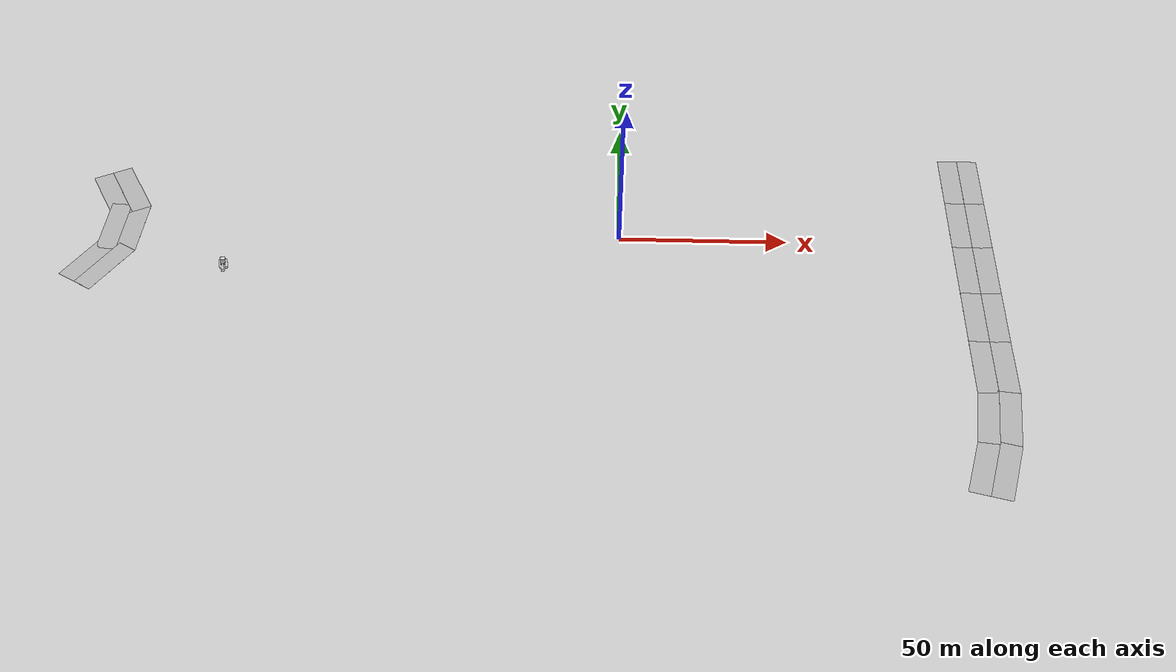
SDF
<sdf version="1.6">
 <world name="default">
  <model name="ground_plane">
   <static>1</static>
   <link name="link">
    <collision name="collision">
     <geometry><plane><normal>0 0 1</normal><size>500 500</size></plane></geometry>
     <surface><friction><ode><mu>100</mu><mu2>50</mu2></ode></friction></surface>
    </collision>
    <visual name="visual">
     <cast_shadows>0</cast_shadows>
     <geometry><plane><normal>0 0 1</normal><size>500 500</size></plane></geometry>
     <material>
      <script><uri>file://media/materials/scripts/gazebo.material</uri><name>Gazebo/Grey</name></script>
     </material>
    </visual>
   </link>
  </model>
  <model name="double_raw_road_2_clone">
   <model name="raw_road">
    <link name="link">
     <inertial>
      <mass>1</mass>
      <inertia>
       <ixx>0.166667</ixx>
       <ixy>0</ixy>
       <ixz>0</ixz>
       <iyy>0.166667</iyy>
       <iyz>0</iyz>
       <izz>0.166667</izz>
      </inertia>
     </inertial>
     <visual name="visual">
      <geometry><box><size>20 6 0.02</size></box></geometry>
      <material>
       <script>
        <name>asphalt/Diffuse</name>
        <uri>model://raw_road/materials/scripts</uri>
        <uri>model://raw_road/materials/textures</uri>
       </script>
       <shader type="vertex"><normal_map>__default__</normal_map></shader>
       <ambient>0.3 0.3 0.3 1</ambient>
       <diffuse>0.7 0.7 0.7 1</diffuse>
       <specular>0.01 0.01 0.01 1</specular>
       <emissive>0 0 0 1</emissive>
      </material>
      <pose>0 0 0.01 0 -0 0</pose>
     </visual>
     <collision name="collision">
      <pose>0 0 0.01 0 -0 0</pose>
      <geometry><box><size>20 6 0.02</size></box></geometry>
      <surface>
       <friction>
        <ode><mu>1</mu><mu2>1</mu2><fdir1>0 0 0</fdir1><slip1>0</slip1><slip2>0</slip2></ode>
        <torsional>
         <coefficient>1</coefficient>
         <patch_radius>0</patch_radius>
         <surface_radius>0</surface_radius>
         <use_patch_radius>1</use_patch_radius>
         <ode><slip>0</slip></ode>
        </torsional>
       </friction>
       <bounce><restitution_coefficient>0</restitution_coefficient><threshold>1e+06</threshold></bounce>
       <contact>
        <collide_without_contact>0</collide_without_contact>
        <collide_without_contact_bitmask>1</collide_without_contact_bitmask>
        <collide_bitmask>1</collide_bitmask>
        <ode>
         <soft_cfm>0</soft_cfm>
         <soft_erp>0.2</soft_erp>
         <kp>1e+13</kp>
         <kd>1</kd>
         <max_vel>0.01</max_vel>
         <min_depth>0</min_depth>
        </ode>
        <bullet>
         <split_impulse>1</split_impulse>
         <split_impulse_penetration_threshold>-0.01</split_impulse_penetration_threshold>
         <soft_cfm>0</soft_cfm>
         <soft_erp>0.2</soft_erp>
         <kp>1e+13</kp>
         <kd>1</kd>
        </bullet>
       </contact>
      </surface>
     </collision>
    </link>
    <static>1</static>
    <pose>0 -3.0009 0 0 -0 0</pose>
   </model>
   <model name="raw_road_0">
    <link name="link">
     <inertial>
      <mass>1</mass>
      <inertia>
       <ixx>0.166667</ixx>
       <ixy>0</ixy>
       <ixz>0</ixz>
       <iyy>0.166667</iyy>
       <iyz>0</iyz>
       <izz>0.166667</izz>
      </inertia>
     </inertial>
     <visual name="visual">
      <geometry><box><size>20 6 0.02</size></box></geometry>
      <material>
       <script>
        <name>asphalt/Diffuse</name>
        <uri>model://raw_road/materials/scripts</uri>
        <uri>model://raw_road/materials/textures</uri>
       </script>
       <shader type="vertex"><normal_map>__default__</normal_map></shader>
       <ambient>0.3 0.3 0.3 1</ambient>
       <diffuse>0.7 0.7 0.7 1</diffuse>
       <specular>0.01 0.01 0.01 1</specular>
       <emissive>0 0 0 1</emissive>
      </material>
      <pose>0 0 0.01 0 -0 0</pose>
     </visual>
     <collision name="collision">
      <pose>0 0 0.01 0 -0 0</pose>
      <geometry><box><size>20 6 0.02</size></box></geometry>
      <surface>
       <friction>
        <ode><mu>1</mu><mu2>1</mu2><fdir1>0 0 0</fdir1><slip1>0</slip1><slip2>0</slip2></ode>
        <torsional>
         <coefficient>1</coefficient>
         <patch_radius>0</patch_radius>
         <surface_radius>0</surface_radius>
         <use_patch_radius>1</use_patch_radius>
         <ode><slip>0</slip></ode>
        </torsional>
       </friction>
       <bounce><restitution_coefficient>0</restitution_coefficient><threshold>1e+06</threshold></bounce>
       <contact>
        <collide_without_contact>0</collide_without_contact>
        <collide_without_contact_bitmask>1</collide_without_contact_bitmask>
        <collide_bitmask>1</collide_bitmask>
        <ode>
         <soft_cfm>0</soft_cfm>
         <soft_erp>0.2</soft_erp>
         <kp>1e+13</kp>
         <kd>1</kd>
         <max_vel>0.01</max_vel>
         <min_depth>0</min_depth>
        </ode>
        <bullet>
         <split_impulse>1</split_impulse>
         <split_impulse_penetration_threshold>-0.01</split_impulse_penetration_threshold>
         <soft_cfm>0</soft_cfm>
         <soft_erp>0.2</soft_erp>
         <kp>1e+13</kp>
         <kd>1</kd>
        </bullet>
       </contact>
      </surface>
     </collision>
    </link>
    <static>1</static>
    <pose>0 3.0009 0 0 -0 0</pose>
   </model>
   <static>1</static>
   <pose>-153.201 15.9793 0 0 0 -1.09404</pose>
  </model>
  <model name="double_raw_road_2_clone_clone">
   <model name="raw_road">
    <link name="link">
     <inertial>
      <mass>1</mass>
      <inertia>
       <ixx>0.166667</ixx>
       <ixy>0</ixy>
       <ixz>0</ixz>
       <iyy>0.166667</iyy>
       <iyz>0</iyz>
       <izz>0.166667</izz>
      </inertia>
     </inertial>
     <visual name="visual">
      <geometry><box><size>20 6 0.02</size></box></geometry>
      <material>
       <script>
        <name>asphalt/Diffuse</name>
        <uri>model://raw_road/materials/scripts</uri>
        <uri>model://raw_road/materials/textures</uri>
       </script>
       <shader type="vertex"><normal_map>__default__</normal_map></shader>
       <ambient>0.3 0.3 0.3 1</ambient>
       <diffuse>0.7 0.7 0.7 1</diffuse>
       <specular>0.01 0.01 0.01 1</specular>
       <emissive>0 0 0 1</emissive>
      </material>
      <pose>0 0 0.01 0 -0 0</pose>
     </visual>
     <collision name="collision">
      <pose>0 0 0.01 0 -0 0</pose>
      <geometry><box><size>20 6 0.02</size></box></geometry>
      <surface>
       <friction>
        <ode><mu>1</mu><mu2>1</mu2><fdir1>0 0 0</fdir1><slip1>0</slip1><slip2>0</slip2></ode>
        <torsional>
         <coefficient>1</coefficient>
         <patch_radius>0</patch_radius>
         <surface_radius>0</surface_radius>
         <use_patch_radius>1</use_patch_radius>
         <ode><slip>0</slip></ode>
        </torsional>
       </friction>
       <bounce><restitution_coefficient>0</restitution_coefficient><threshold>1e+06</threshold></bounce>
       <contact>
        <collide_without_contact>0</collide_without_contact>
        <collide_without_contact_bitmask>1</collide_without_contact_bitmask>
        <collide_bitmask>1</collide_bitmask>
        <ode>
         <soft_cfm>0</soft_cfm>
         <soft_erp>0.2</soft_erp>
         <kp>1e+13</kp>
         <kd>1</kd>
         <max_vel>0.01</max_vel>
         <min_depth>0</min_depth>
        </ode>
        <bullet>
         <split_impulse>1</split_impulse>
         <split_impulse_penetration_threshold>-0.01</split_impulse_penetration_threshold>
         <soft_cfm>0</soft_cfm>
         <soft_erp>0.2</soft_erp>
         <kp>1e+13</kp>
         <kd>1</kd>
        </bullet>
       </contact>
      </surface>
     </collision>
    </link>
    <static>1</static>
    <pose>0 -3.0009 0 0 -0 0</pose>
   </model>
   <model name="raw_road_0">
    <link name="link">
     <inertial>
      <mass>1</mass>
      <inertia>
       <ixx>0.166667</ixx>
       <ixy>0</ixy>
       <ixz>0</ixz>
       <iyy>0.166667</iyy>
       <iyz>0</iyz>
       <izz>0.166667</izz>
      </inertia>
     </inertial>
     <visual name="visual">
      <geometry><box><size>20 6 0.02</size></box></geometry>
      <material>
       <script>
        <name>asphalt/Diffuse</name>
        <uri>model://raw_road/materials/scripts</uri>
        <uri>model://raw_road/materials/textures</uri>
       </script>
       <shader type="vertex"><normal_map>__default__</normal_map></shader>
       <ambient>0.3 0.3 0.3 1</ambient>
       <diffuse>0.7 0.7 0.7 1</diffuse>
       <specular>0.01 0.01 0.01 1</specular>
       <emissive>0 0 0 1</emissive>
      </material>
      <pose>0 0 0.01 0 -0 0</pose>
     </visual>
     <collision name="collision">
      <pose>0 0 0.01 0 -0 0</pose>
      <geometry><box><size>20 6 0.02</size></box></geometry>
      <surface>
       <friction>
        <ode><mu>1</mu><mu2>1</mu2><fdir1>0 0 0</fdir1><slip1>0</slip1><slip2>0</slip2></ode>
        <torsional>
         <coefficient>1</coefficient>
         <patch_radius>0</patch_radius>
         <surface_radius>0</surface_radius>
         <use_patch_radius>1</use_patch_radius>
         <ode><slip>0</slip></ode>
        </torsional>
       </friction>
       <bounce><restitution_coefficient>0</restitution_coefficient><threshold>1e+06</threshold></bounce>
       <contact>
        <collide_without_contact>0</collide_without_contact>
        <collide_without_contact_bitmask>1</collide_without_contact_bitmask>
        <collide_bitmask>1</collide_bitmask>
        <ode>
         <soft_cfm>0</soft_cfm>
         <soft_erp>0.2</soft_erp>
         <kp>1e+13</kp>
         <kd>1</kd>
         <max_vel>0.01</max_vel>
         <min_depth>0</min_depth>
        </ode>
        <bullet>
         <split_impulse>1</split_impulse>
         <split_impulse_penetration_threshold>-0.01</split_impulse_penetration_threshold>
         <soft_cfm>0</soft_cfm>
         <soft_erp>0.2</soft_erp>
         <kp>1e+13</kp>
         <kd>1</kd>
        </bullet>
       </contact>
      </surface>
     </collision>
    </link>
    <static>1</static>
    <pose>0 3.0009 0 0 -0 0</pose>
   </model>
   <static>1</static>
   <pose>-149.979 0.265816 0 0 0 -1.64156</pose>
  </model>
  <model name="double_raw_road_2_clone_clone_clone">
   <model name="raw_road">
    <link name="link">
     <inertial>
      <mass>1</mass>
      <inertia>
       <ixx>0.166667</ixx>
       <ixy>0</ixy>
       <ixz>0</ixz>
       <iyy>0.166667</iyy>
       <iyz>0</iyz>
       <izz>0.166667</izz>
      </inertia>
     </inertial>
     <visual name="visual">
      <geometry><box><size>20 6 0.02</size></box></geometry>
      <material>
       <script>
        <name>asphalt/Diffuse</name>
        <uri>model://raw_road/materials/scripts</uri>
        <uri>model://raw_road/materials/textures</uri>
       </script>
       <shader type="vertex"><normal_map>__default__</normal_map></shader>
       <ambient>0.3 0.3 0.3 1</ambient>
       <diffuse>0.7 0.7 0.7 1</diffuse>
       <specular>0.01 0.01 0.01 1</specular>
       <emissive>0 0 0 1</emissive>
      </material>
      <pose>0 0 0.01 0 -0 0</pose>
     </visual>
     <collision name="collision">
      <pose>0 0 0.01 0 -0 0</pose>
      <geometry><box><size>20 6 0.02</size></box></geometry>
      <surface>
       <friction>
        <ode><mu>1</mu><mu2>1</mu2><fdir1>0 0 0</fdir1><slip1>0</slip1><slip2>0</slip2></ode>
        <torsional>
         <coefficient>1</coefficient>
         <patch_radius>0</patch_radius>
         <surface_radius>0</surface_radius>
         <use_patch_radius>1</use_patch_radius>
         <ode><slip>0</slip></ode>
        </torsional>
       </friction>
       <bounce><restitution_coefficient>0</restitution_coefficient><threshold>1e+06</threshold></bounce>
       <contact>
        <collide_without_contact>0</collide_without_contact>
        <collide_without_contact_bitmask>1</collide_without_contact_bitmask>
        <collide_bitmask>1</collide_bitmask>
        <ode>
         <soft_cfm>0</soft_cfm>
         <soft_erp>0.2</soft_erp>
         <kp>1e+13</kp>
         <kd>1</kd>
         <max_vel>0.01</max_vel>
         <min_depth>0</min_depth>
        </ode>
        <bullet>
         <split_impulse>1</split_impulse>
         <split_impulse_penetration_threshold>-0.01</split_impulse_penetration_threshold>
         <soft_cfm>0</soft_cfm>
         <soft_erp>0.2</soft_erp>
         <kp>1e+13</kp>
         <kd>1</kd>
        </bullet>
       </contact>
      </surface>
     </collision>
    </link>
    <static>1</static>
    <pose>0 -3.0009 0 0 -0 0</pose>
   </model>
   <model name="raw_road_0">
    <link name="link">
     <inertial>
      <mass>1</mass>
      <inertia>
       <ixx>0.166667</ixx>
       <ixy>0</ixy>
       <ixz>0</ixz>
       <iyy>0.166667</iyy>
       <iyz>0</iyz>
       <izz>0.166667</izz>
      </inertia>
     </inertial>
     <visual name="visual">
      <geometry><box><size>20 6 0.02</size></box></geometry>
      <material>
       <script>
        <name>asphalt/Diffuse</name>
        <uri>model://raw_road/materials/scripts</uri>
        <uri>model://raw_road/materials/textures</uri>
       </script>
       <shader type="vertex"><normal_map>__default__</normal_map></shader>
       <ambient>0.3 0.3 0.3 1</ambient>
       <diffuse>0.7 0.7 0.7 1</diffuse>
       <specular>0.01 0.01 0.01 1</specular>
       <emissive>0 0 0 1</emissive>
      </material>
      <pose>0 0 0.01 0 -0 0</pose>
     </visual>
     <collision name="collision">
      <pose>0 0 0.01 0 -0 0</pose>
      <geometry><box><size>20 6 0.02</size></box></geometry>
      <surface>
       <friction>
        <ode><mu>1</mu><mu2>1</mu2><fdir1>0 0 0</fdir1><slip1>0</slip1><slip2>0</slip2></ode>
        <torsional>
         <coefficient>1</coefficient>
         <patch_radius>0</patch_radius>
         <surface_radius>0</surface_radius>
         <use_patch_radius>1</use_patch_radius>
         <ode><slip>0</slip></ode>
        </torsional>
       </friction>
       <bounce><restitution_coefficient>0</restitution_coefficient><threshold>1e+06</threshold></bounce>
       <contact>
        <collide_without_contact>0</collide_without_contact>
        <collide_without_contact_bitmask>1</collide_without_contact_bitmask>
        <collide_bitmask>1</collide_bitmask>
        <ode>
         <soft_cfm>0</soft_cfm>
         <soft_erp>0.2</soft_erp>
         <kp>1e+13</kp>
         <kd>1</kd>
         <max_vel>0.01</max_vel>
         <min_depth>0</min_depth>
        </ode>
        <bullet>
         <split_impulse>1</split_impulse>
         <split_impulse_penetration_threshold>-0.01</split_impulse_penetration_threshold>
         <soft_cfm>0</soft_cfm>
         <soft_erp>0.2</soft_erp>
         <kp>1e+13</kp>
         <kd>1</kd>
        </bullet>
       </contact>
      </surface>
     </collision>
    </link>
    <static>1</static>
    <pose>0 3.0009 0 0 -0 0</pose>
   </model>
   <static>1</static>
   <pose>-155.045 -15.5124 0 0 0 -2.12011</pose>
  </model>
  <model name="double_raw_road_4_clone_2_clone">
   <model name="raw_road">
    <link name="link">
     <inertial>
      <mass>1</mass>
      <inertia>
       <ixx>0.166667</ixx>
       <ixy>0</ixy>
       <ixz>0</ixz>
       <iyy>0.166667</iyy>
       <iyz>0</iyz>
       <izz>0.166667</izz>
      </inertia>
     </inertial>
     <visual name="visual">
      <geometry><box><size>20 6 0.02</size></box></geometry>
      <material>
       <script>
        <name>asphalt/Diffuse</name>
        <uri>model://raw_road/materials/scripts</uri>
        <uri>model://raw_road/materials/textures</uri>
       </script>
       <shader type="vertex"><normal_map>__default__</normal_map></shader>
       <ambient>0.3 0.3 0.3 1</ambient>
       <diffuse>0.7 0.7 0.7 1</diffuse>
       <specular>0.01 0.01 0.01 1</specular>
       <emissive>0 0 0 1</emissive>
      </material>
      <pose>0 0 0.01 0 -0 0</pose>
     </visual>
     <collision name="collision">
      <pose>0 0 0.01 0 -0 0</pose>
      <geometry><box><size>20 6 0.02</size></box></geometry>
      <surface>
       <friction>
        <ode><mu>1</mu><mu2>1</mu2><fdir1>0 0 0</fdir1><slip1>0</slip1><slip2>0</slip2></ode>
        <torsional>
         <coefficient>1</coefficient>
         <patch_radius>0</patch_radius>
         <surface_radius>0</surface_radius>
         <use_patch_radius>1</use_patch_radius>
         <ode><slip>0</slip></ode>
        </torsional>
       </friction>
       <bounce><restitution_coefficient>0</restitution_coefficient><threshold>1e+06</threshold></bounce>
       <contact>
        <collide_without_contact>0</collide_without_contact>
        <collide_without_contact_bitmask>1</collide_without_contact_bitmask>
        <collide_bitmask>1</collide_bitmask>
        <ode>
         <soft_cfm>0</soft_cfm>
         <soft_erp>0.2</soft_erp>
         <kp>1e+13</kp>
         <kd>1</kd>
         <max_vel>0.01</max_vel>
         <min_depth>0</min_depth>
        </ode>
        <bullet>
         <split_impulse>1</split_impulse>
         <split_impulse_penetration_threshold>-0.01</split_impulse_penetration_threshold>
         <soft_cfm>0</soft_cfm>
         <soft_erp>0.2</soft_erp>
         <kp>1e+13</kp>
         <kd>1</kd>
        </bullet>
       </contact>
      </surface>
     </collision>
    </link>
    <static>1</static>
    <pose>0 -3.0009 0 0 -0 0</pose>
   </model>
   <model name="raw_road_0">
    <link name="link">
     <inertial>
      <mass>1</mass>
      <inertia>
       <ixx>0.166667</ixx>
       <ixy>0</ixy>
       <ixz>0</ixz>
       <iyy>0.166667</iyy>
       <iyz>0</iyz>
       <izz>0.166667</izz>
      </inertia>
     </inertial>
     <visual name="visual">
      <geometry><box><size>20 6 0.02</size></box></geometry>
      <material>
       <script>
        <name>asphalt/Diffuse</name>
        <uri>model://raw_road/materials/scripts</uri>
        <uri>model://raw_road/materials/textures</uri>
       </script>
       <shader type="vertex"><normal_map>__default__</normal_map></shader>
       <ambient>0.3 0.3 0.3 1</ambient>
       <diffuse>0.7 0.7 0.7 1</diffuse>
       <specular>0.01 0.01 0.01 1</specular>
       <emissive>0 0 0 1</emissive>
      </material>
      <pose>0 0 0.01 0 -0 0</pose>
     </visual>
     <collision name="collision">
      <pose>0 0 0.01 0 -0 0</pose>
      <geometry><box><size>20 6 0.02</size></box></geometry>
      <surface>
       <friction>
        <ode><mu>1</mu><mu2>1</mu2><fdir1>0 0 0</fdir1><slip1>0</slip1><slip2>0</slip2></ode>
        <torsional>
         <coefficient>1</coefficient>
         <patch_radius>0</patch_radius>
         <surface_radius>0</surface_radius>
         <use_patch_radius>1</use_patch_radius>
         <ode><slip>0</slip></ode>
        </torsional>
       </friction>
       <bounce><restitution_coefficient>0</restitution_coefficient><threshold>1e+06</threshold></bounce>
       <contact>
        <collide_without_contact>0</collide_without_contact>
        <collide_without_contact_bitmask>1</collide_without_contact_bitmask>
        <collide_bitmask>1</collide_bitmask>
        <ode>
         <soft_cfm>0</soft_cfm>
         <soft_erp>0.2</soft_erp>
         <kp>1e+13</kp>
         <kd>1</kd>
         <max_vel>0.01</max_vel>
         <min_depth>0</min_depth>
        </ode>
        <bullet>
         <split_impulse>1</split_impulse>
         <split_impulse_penetration_threshold>-0.01</split_impulse_penetration_threshold>
         <soft_cfm>0</soft_cfm>
         <soft_erp>0.2</soft_erp>
         <kp>1e+13</kp>
         <kd>1</kd>
        </bullet>
       </contact>
      </surface>
     </collision>
    </link>
    <static>1</static>
    <pose>0 3.0009 0 0 -0 0</pose>
   </model>
   <static>1</static>
   <pose>105.504 -49.6882 0 0 -0 1.57392</pose>
  </model>
  <model name="double_raw_road_4_clone_2_clone_0_clone_clone_clone_clone_clone_clone_0_clone">
   <model name="raw_road">
    <link name="link">
     <inertial>
      <mass>1</mass>
      <inertia>
       <ixx>0.166667</ixx>
       <ixy>0</ixy>
       <ixz>0</ixz>
       <iyy>0.166667</iyy>
       <iyz>0</iyz>
       <izz>0.166667</izz>
      </inertia>
     </inertial>
     <visual name="visual">
      <geometry><box><size>20 6 0.02</size></box></geometry>
      <material>
       <script>
        <name>asphalt/Diffuse</name>
        <uri>model://raw_road/materials/scripts</uri>
        <uri>model://raw_road/materials/textures</uri>
       </script>
       <shader type="vertex"><normal_map>__default__</normal_map></shader>
       <ambient>0.3 0.3 0.3 1</ambient>
       <diffuse>0.7 0.7 0.7 1</diffuse>
       <specular>0.01 0.01 0.01 1</specular>
       <emissive>0 0 0 1</emissive>
      </material>
      <pose>0 0 0.01 0 -0 0</pose>
     </visual>
     <collision name="collision">
      <pose>0 0 0.01 0 -0 0</pose>
      <geometry><box><size>20 6 0.02</size></box></geometry>
      <surface>
       <friction>
        <ode><mu>1</mu><mu2>1</mu2><fdir1>0 0 0</fdir1><slip1>0</slip1><slip2>0</slip2></ode>
        <torsional>
         <coefficient>1</coefficient>
         <patch_radius>0</patch_radius>
         <surface_radius>0</surface_radius>
         <use_patch_radius>1</use_patch_radius>
         <ode><slip>0</slip></ode>
        </torsional>
       </friction>
       <bounce><restitution_coefficient>0</restitution_coefficient><threshold>1e+06</threshold></bounce>
       <contact>
        <collide_without_contact>0</collide_without_contact>
        <collide_without_contact_bitmask>1</collide_without_contact_bitmask>
        <collide_bitmask>1</collide_bitmask>
        <ode>
         <soft_cfm>0</soft_cfm>
         <soft_erp>0.2</soft_erp>
         <kp>1e+13</kp>
         <kd>1</kd>
         <max_vel>0.01</max_vel>
         <min_depth>0</min_depth>
        </ode>
        <bullet>
         <split_impulse>1</split_impulse>
         <split_impulse_penetration_threshold>-0.01</split_impulse_penetration_threshold>
         <soft_cfm>0</soft_cfm>
         <soft_erp>0.2</soft_erp>
         <kp>1e+13</kp>
         <kd>1</kd>
        </bullet>
       </contact>
      </surface>
     </collision>
    </link>
    <static>1</static>
    <pose>0 -3.0009 0 0 -0 0</pose>
   </model>
   <model name="raw_road_0">
    <link name="link">
     <inertial>
      <mass>1</mass>
      <inertia>
       <ixx>0.166667</ixx>
       <ixy>0</ixy>
       <ixz>0</ixz>
       <iyy>0.166667</iyy>
       <iyz>0</iyz>
       <izz>0.166667</izz>
      </inertia>
     </inertial>
     <visual name="visual">
      <geometry><box><size>20 6 0.02</size></box></geometry>
      <material>
       <script>
        <name>asphalt/Diffuse</name>
        <uri>model://raw_road/materials/scripts</uri>
        <uri>model://raw_road/materials/textures</uri>
       </script>
       <shader type="vertex"><normal_map>__default__</normal_map></shader>
       <ambient>0.3 0.3 0.3 1</ambient>
       <diffuse>0.7 0.7 0.7 1</diffuse>
       <specular>0.01 0.01 0.01 1</specular>
       <emissive>0 0 0 1</emissive>
      </material>
      <pose>0 0 0.01 0 -0 0</pose>
     </visual>
     <collision name="collision">
      <pose>0 0 0.01 0 -0 0</pose>
      <geometry><box><size>20 6 0.02</size></box></geometry>
      <surface>
       <friction>
        <ode><mu>1</mu><mu2>1</mu2><fdir1>0 0 0</fdir1><slip1>0</slip1><slip2>0</slip2></ode>
        <torsional>
         <coefficient>1</coefficient>
         <patch_radius>0</patch_radius>
         <surface_radius>0</surface_radius>
         <use_patch_radius>1</use_patch_radius>
         <ode><slip>0</slip></ode>
        </torsional>
       </friction>
       <bounce><restitution_coefficient>0</restitution_coefficient><threshold>1e+06</threshold></bounce>
       <contact>
        <collide_without_contact>0</collide_without_contact>
        <collide_without_contact_bitmask>1</collide_without_contact_bitmask>
        <collide_bitmask>1</collide_bitmask>
        <ode>
         <soft_cfm>0</soft_cfm>
         <soft_erp>0.2</soft_erp>
         <kp>1e+13</kp>
         <kd>1</kd>
         <max_vel>0.01</max_vel>
         <min_depth>0</min_depth>
        </ode>
        <bullet>
         <split_impulse>1</split_impulse>
         <split_impulse_penetration_threshold>-0.01</split_impulse_penetration_threshold>
         <soft_cfm>0</soft_cfm>
         <soft_erp>0.2</soft_erp>
         <kp>1e+13</kp>
         <kd>1</kd>
        </bullet>
       </contact>
      </surface>
     </collision>
    </link>
    <static>1</static>
    <pose>0 3.0009 0 0 -0 0</pose>
   </model>
   <static>1</static>
   <pose>100.92 -87.6055 0 0 -0 1.31113</pose>
  </model>
  <model name="double_raw_road_4_clone_2_clone_0_clone_clone_clone_clone_clone_clone_0_clone_clone">
   <model name="raw_road">
    <link name="link">
     <inertial>
      <mass>1</mass>
      <inertia>
       <ixx>0.166667</ixx>
       <ixy>0</ixy>
       <ixz>0</ixz>
       <iyy>0.166667</iyy>
       <iyz>0</iyz>
       <izz>0.166667</izz>
      </inertia>
     </inertial>
     <visual name="visual">
      <geometry><box><size>20 6 0.02</size></box></geometry>
      <material>
       <script>
        <name>asphalt/Diffuse</name>
        <uri>model://raw_road/materials/scripts</uri>
        <uri>model://raw_road/materials/textures</uri>
       </script>
       <shader type="vertex"><normal_map>__default__</normal_map></shader>
       <ambient>0.3 0.3 0.3 1</ambient>
       <diffuse>0.7 0.7 0.7 1</diffuse>
       <specular>0.01 0.01 0.01 1</specular>
       <emissive>0 0 0 1</emissive>
      </material>
      <pose>0 0 0.01 0 -0 0</pose>
     </visual>
     <collision name="collision">
      <pose>0 0 0.01 0 -0 0</pose>
      <geometry><box><size>20 6 0.02</size></box></geometry>
      <surface>
       <friction>
        <ode><mu>1</mu><mu2>1</mu2><fdir1>0 0 0</fdir1><slip1>0</slip1><slip2>0</slip2></ode>
        <torsional>
         <coefficient>1</coefficient>
         <patch_radius>0</patch_radius>
         <surface_radius>0</surface_radius>
         <use_patch_radius>1</use_patch_radius>
         <ode><slip>0</slip></ode>
        </torsional>
       </friction>
       <bounce><restitution_coefficient>0</restitution_coefficient><threshold>1e+06</threshold></bounce>
       <contact>
        <collide_without_contact>0</collide_without_contact>
        <collide_without_contact_bitmask>1</collide_without_contact_bitmask>
        <collide_bitmask>1</collide_bitmask>
        <ode>
         <soft_cfm>0</soft_cfm>
         <soft_erp>0.2</soft_erp>
         <kp>1e+13</kp>
         <kd>1</kd>
         <max_vel>0.01</max_vel>
         <min_depth>0</min_depth>
        </ode>
        <bullet>
         <split_impulse>1</split_impulse>
         <split_impulse_penetration_threshold>-0.01</split_impulse_penetration_threshold>
         <soft_cfm>0</soft_cfm>
         <soft_erp>0.2</soft_erp>
         <kp>1e+13</kp>
         <kd>1</kd>
        </bullet>
       </contact>
      </surface>
     </collision>
    </link>
    <static>1</static>
    <pose>0 -3.0009 0 0 -0 0</pose>
   </model>
   <model name="raw_road_0">
    <link name="link">
     <inertial>
      <mass>1</mass>
      <inertia>
       <ixx>0.166667</ixx>
       <ixy>0</ixy>
       <ixz>0</ixz>
       <iyy>0.166667</iyy>
       <iyz>0</iyz>
       <izz>0.166667</izz>
      </inertia>
     </inertial>
     <visual name="visual">
      <geometry><box><size>20 6 0.02</size></box></geometry>
      <material>
       <script>
        <name>asphalt/Diffuse</name>
        <uri>model://raw_road/materials/scripts</uri>
        <uri>model://raw_road/materials/textures</uri>
       </script>
       <shader type="vertex"><normal_map>__default__</normal_map></shader>
       <ambient>0.3 0.3 0.3 1</ambient>
       <diffuse>0.7 0.7 0.7 1</diffuse>
       <specular>0.01 0.01 0.01 1</specular>
       <emissive>0 0 0 1</emissive>
      </material>
      <pose>0 0 0.01 0 -0 0</pose>
     </visual>
     <collision name="collision">
      <pose>0 0 0.01 0 -0 0</pose>
      <geometry><box><size>20 6 0.02</size></box></geometry>
      <surface>
       <friction>
        <ode><mu>1</mu><mu2>1</mu2><fdir1>0 0 0</fdir1><slip1>0</slip1><slip2>0</slip2></ode>
        <torsional>
         <coefficient>1</coefficient>
         <patch_radius>0</patch_radius>
         <surface_radius>0</surface_radius>
         <use_patch_radius>1</use_patch_radius>
         <ode><slip>0</slip></ode>
        </torsional>
       </friction>
       <bounce><restitution_coefficient>0</restitution_coefficient><threshold>1e+06</threshold></bounce>
       <contact>
        <collide_without_contact>0</collide_without_contact>
        <collide_without_contact_bitmask>1</collide_without_contact_bitmask>
        <collide_bitmask>1</collide_bitmask>
        <ode>
         <soft_cfm>0</soft_cfm>
         <soft_erp>0.2</soft_erp>
         <kp>1e+13</kp>
         <kd>1</kd>
         <max_vel>0.01</max_vel>
         <min_depth>0</min_depth>
        </ode>
        <bullet>
         <split_impulse>1</split_impulse>
         <split_impulse_penetration_threshold>-0.01</split_impulse_penetration_threshold>
         <soft_cfm>0</soft_cfm>
         <soft_erp>0.2</soft_erp>
         <kp>1e+13</kp>
         <kd>1</kd>
        </bullet>
       </contact>
      </surface>
     </collision>
    </link>
    <static>1</static>
    <pose>0 3.0009 0 0 -0 0</pose>
   </model>
   <static>1</static>
   <pose>104.426 -68.8875 0 0 -0 1.4537</pose>
  </model>
  <model name="double_raw_road_4_clone_2_clone_clone_clone">
   <model name="raw_road">
    <link name="link">
     <inertial>
      <mass>1</mass>
      <inertia>
       <ixx>0.166667</ixx>
       <ixy>0</ixy>
       <ixz>0</ixz>
       <iyy>0.166667</iyy>
       <iyz>0</iyz>
       <izz>0.166667</izz>
      </inertia>
     </inertial>
     <visual name="visual">
      <geometry><box><size>20 6 0.02</size></box></geometry>
      <material>
       <script>
        <name>asphalt/Diffuse</name>
        <uri>model://raw_road/materials/scripts</uri>
        <uri>model://raw_road/materials/textures</uri>
       </script>
       <shader type="vertex"><normal_map>__default__</normal_map></shader>
       <ambient>0.3 0.3 0.3 1</ambient>
       <diffuse>0.7 0.7 0.7 1</diffuse>
       <specular>0.01 0.01 0.01 1</specular>
       <emissive>0 0 0 1</emissive>
      </material>
      <pose>0 0 0.01 0 -0 0</pose>
     </visual>
     <collision name="collision">
      <pose>0 0 0.01 0 -0 0</pose>
      <geometry><box><size>20 6 0.02</size></box></geometry>
      <surface>
       <friction>
        <ode><mu>1</mu><mu2>1</mu2><fdir1>0 0 0</fdir1><slip1>0</slip1><slip2>0</slip2></ode>
        <torsional>
         <coefficient>1</coefficient>
         <patch_radius>0</patch_radius>
         <surface_radius>0</surface_radius>
         <use_patch_radius>1</use_patch_radius>
         <ode><slip>0</slip></ode>
        </torsional>
       </friction>
       <bounce><restitution_coefficient>0</restitution_coefficient><threshold>1e+06</threshold></bounce>
       <contact>
        <collide_without_contact>0</collide_without_contact>
        <collide_without_contact_bitmask>1</collide_without_contact_bitmask>
        <collide_bitmask>1</collide_bitmask>
        <ode>
         <soft_cfm>0</soft_cfm>
         <soft_erp>0.2</soft_erp>
         <kp>1e+13</kp>
         <kd>1</kd>
         <max_vel>0.01</max_vel>
         <min_depth>0</min_depth>
        </ode>
        <bullet>
         <split_impulse>1</split_impulse>
         <split_impulse_penetration_threshold>-0.01</split_impulse_penetration_threshold>
         <soft_cfm>0</soft_cfm>
         <soft_erp>0.2</soft_erp>
         <kp>1e+13</kp>
         <kd>1</kd>
        </bullet>
       </contact>
      </surface>
     </collision>
    </link>
    <static>1</static>
    <pose>0 -3.0009 0 0 -0 0</pose>
   </model>
   <model name="raw_road_0">
    <link name="link">
     <inertial>
      <mass>1</mass>
      <inertia>
       <ixx>0.166667</ixx>
       <ixy>0</ixy>
       <ixz>0</ixz>
       <iyy>0.166667</iyy>
       <iyz>0</iyz>
       <izz>0.166667</izz>
      </inertia>
     </inertial>
     <visual name="visual">
      <geometry><box><size>20 6 0.02</size></box></geometry>
      <material>
       <script>
        <name>asphalt/Diffuse</name>
        <uri>model://raw_road/materials/scripts</uri>
        <uri>model://raw_road/materials/textures</uri>
       </script>
       <shader type="vertex"><normal_map>__default__</normal_map></shader>
       <ambient>0.3 0.3 0.3 1</ambient>
       <diffuse>0.7 0.7 0.7 1</diffuse>
       <specular>0.01 0.01 0.01 1</specular>
       <emissive>0 0 0 1</emissive>
      </material>
      <pose>0 0 0.01 0 -0 0</pose>
     </visual>
     <collision name="collision">
      <pose>0 0 0.01 0 -0 0</pose>
      <geometry><box><size>20 6 0.02</size></box></geometry>
      <surface>
       <friction>
        <ode><mu>1</mu><mu2>1</mu2><fdir1>0 0 0</fdir1><slip1>0</slip1><slip2>0</slip2></ode>
        <torsional>
         <coefficient>1</coefficient>
         <patch_radius>0</patch_radius>
         <surface_radius>0</surface_radius>
         <use_patch_radius>1</use_patch_radius>
         <ode><slip>0</slip></ode>
        </torsional>
       </friction>
       <bounce><restitution_coefficient>0</restitution_coefficient><threshold>1e+06</threshold></bounce>
       <contact>
        <collide_without_contact>0</collide_without_contact>
        <collide_without_contact_bitmask>1</collide_without_contact_bitmask>
        <collide_bitmask>1</collide_bitmask>
        <ode>
         <soft_cfm>0</soft_cfm>
         <soft_erp>0.2</soft_erp>
         <kp>1e+13</kp>
         <kd>1</kd>
         <max_vel>0.01</max_vel>
         <min_depth>0</min_depth>
        </ode>
        <bullet>
         <split_impulse>1</split_impulse>
         <split_impulse_penetration_threshold>-0.01</split_impulse_penetration_threshold>
         <soft_cfm>0</soft_cfm>
         <soft_erp>0.2</soft_erp>
         <kp>1e+13</kp>
         <kd>1</kd>
        </bullet>
       </contact>
      </surface>
     </collision>
    </link>
    <static>1</static>
    <pose>0 3.0009 0 0 -0 0</pose>
   </model>
   <static>1</static>
   <pose>105.49 -10.0209 0 0 -0 1.57074</pose>
  </model>
  <model name="double_raw_road_4_clone_2_clone_clone_clone_clone">
   <model name="raw_road">
    <link name="link">
     <inertial>
      <mass>1</mass>
      <inertia>
       <ixx>0.166667</ixx>
       <ixy>0</ixy>
       <ixz>0</ixz>
       <iyy>0.166667</iyy>
       <iyz>0</iyz>
       <izz>0.166667</izz>
      </inertia>
     </inertial>
     <visual name="visual">
      <geometry><box><size>20 6 0.02</size></box></geometry>
      <material>
       <script>
        <name>asphalt/Diffuse</name>
        <uri>model://raw_road/materials/scripts</uri>
        <uri>model://raw_road/materials/textures</uri>
       </script>
       <shader type="vertex"><normal_map>__default__</normal_map></shader>
       <ambient>0.3 0.3 0.3 1</ambient>
       <diffuse>0.7 0.7 0.7 1</diffuse>
       <specular>0.01 0.01 0.01 1</specular>
       <emissive>0 0 0 1</emissive>
      </material>
      <pose>0 0 0.01 0 -0 0</pose>
     </visual>
     <collision name="collision">
      <pose>0 0 0.01 0 -0 0</pose>
      <geometry><box><size>20 6 0.02</size></box></geometry>
      <surface>
       <friction>
        <ode><mu>1</mu><mu2>1</mu2><fdir1>0 0 0</fdir1><slip1>0</slip1><slip2>0</slip2></ode>
        <torsional>
         <coefficient>1</coefficient>
         <patch_radius>0</patch_radius>
         <surface_radius>0</surface_radius>
         <use_patch_radius>1</use_patch_radius>
         <ode><slip>0</slip></ode>
        </torsional>
       </friction>
       <bounce><restitution_coefficient>0</restitution_coefficient><threshold>1e+06</threshold></bounce>
       <contact>
        <collide_without_contact>0</collide_without_contact>
        <collide_without_contact_bitmask>1</collide_without_contact_bitmask>
        <collide_bitmask>1</collide_bitmask>
        <ode>
         <soft_cfm>0</soft_cfm>
         <soft_erp>0.2</soft_erp>
         <kp>1e+13</kp>
         <kd>1</kd>
         <max_vel>0.01</max_vel>
         <min_depth>0</min_depth>
        </ode>
        <bullet>
         <split_impulse>1</split_impulse>
         <split_impulse_penetration_threshold>-0.01</split_impulse_penetration_threshold>
         <soft_cfm>0</soft_cfm>
         <soft_erp>0.2</soft_erp>
         <kp>1e+13</kp>
         <kd>1</kd>
        </bullet>
       </contact>
      </surface>
     </collision>
    </link>
    <static>1</static>
    <pose>0 -3.0009 0 0 -0 0</pose>
   </model>
   <model name="raw_road_0">
    <link name="link">
     <inertial>
      <mass>1</mass>
      <inertia>
       <ixx>0.166667</ixx>
       <ixy>0</ixy>
       <ixz>0</ixz>
       <iyy>0.166667</iyy>
       <iyz>0</iyz>
       <izz>0.166667</izz>
      </inertia>
     </inertial>
     <visual name="visual">
      <geometry><box><size>20 6 0.02</size></box></geometry>
      <material>
       <script>
        <name>asphalt/Diffuse</name>
        <uri>model://raw_road/materials/scripts</uri>
        <uri>model://raw_road/materials/textures</uri>
       </script>
       <shader type="vertex"><normal_map>__default__</normal_map></shader>
       <ambient>0.3 0.3 0.3 1</ambient>
       <diffuse>0.7 0.7 0.7 1</diffuse>
       <specular>0.01 0.01 0.01 1</specular>
       <emissive>0 0 0 1</emissive>
      </material>
      <pose>0 0 0.01 0 -0 0</pose>
     </visual>
     <collision name="collision">
      <pose>0 0 0.01 0 -0 0</pose>
      <geometry><box><size>20 6 0.02</size></box></geometry>
      <surface>
       <friction>
        <ode><mu>1</mu><mu2>1</mu2><fdir1>0 0 0</fdir1><slip1>0</slip1><slip2>0</slip2></ode>
        <torsional>
         <coefficient>1</coefficient>
         <patch_radius>0</patch_radius>
         <surface_radius>0</surface_radius>
         <use_patch_radius>1</use_patch_radius>
         <ode><slip>0</slip></ode>
        </torsional>
       </friction>
       <bounce><restitution_coefficient>0</restitution_coefficient><threshold>1e+06</threshold></bounce>
       <contact>
        <collide_without_contact>0</collide_without_contact>
        <collide_without_contact_bitmask>1</collide_without_contact_bitmask>
        <collide_bitmask>1</collide_bitmask>
        <ode>
         <soft_cfm>0</soft_cfm>
         <soft_erp>0.2</soft_erp>
         <kp>1e+13</kp>
         <kd>1</kd>
         <max_vel>0.01</max_vel>
         <min_depth>0</min_depth>
        </ode>
        <bullet>
         <split_impulse>1</split_impulse>
         <split_impulse_penetration_threshold>-0.01</split_impulse_penetration_threshold>
         <soft_cfm>0</soft_cfm>
         <soft_erp>0.2</soft_erp>
         <kp>1e+13</kp>
         <kd>1</kd>
        </bullet>
       </contact>
      </surface>
     </collision>
    </link>
    <static>1</static>
    <pose>0 3.0009 0 0 -0 0</pose>
   </model>
   <static>1</static>
   <pose>105.49 -29.8108 0 0 -0 1.57074</pose>
  </model>
  <model name="double_raw_road_4_clone_2_clone_clone_clone_clone_0">
   <model name="raw_road">
    <link name="link">
     <inertial>
      <mass>1</mass>
      <inertia>
       <ixx>0.166667</ixx>
       <ixy>0</ixy>
       <ixz>0</ixz>
       <iyy>0.166667</iyy>
       <iyz>0</iyz>
       <izz>0.166667</izz>
      </inertia>
     </inertial>
     <visual name="visual">
      <geometry><box><size>20 6 0.02</size></box></geometry>
      <material>
       <script>
        <name>asphalt/Diffuse</name>
        <uri>model://raw_road/materials/scripts</uri>
        <uri>model://raw_road/materials/textures</uri>
       </script>
       <shader type="vertex"><normal_map>__default__</normal_map></shader>
       <ambient>0.3 0.3 0.3 1</ambient>
       <diffuse>0.7 0.7 0.7 1</diffuse>
       <specular>0.01 0.01 0.01 1</specular>
       <emissive>0 0 0 1</emissive>
      </material>
      <pose>0 0 0.01 0 -0 0</pose>
     </visual>
     <collision name="collision">
      <pose>0 0 0.01 0 -0 0</pose>
      <geometry><box><size>20 6 0.02</size></box></geometry>
      <surface>
       <friction>
        <ode><mu>1</mu><mu2>1</mu2><fdir1>0 0 0</fdir1><slip1>0</slip1><slip2>0</slip2></ode>
        <torsional>
         <coefficient>1</coefficient>
         <patch_radius>0</patch_radius>
         <surface_radius>0</surface_radius>
         <use_patch_radius>1</use_patch_radius>
         <ode><slip>0</slip></ode>
        </torsional>
       </friction>
       <bounce><restitution_coefficient>0</restitution_coefficient><threshold>1e+06</threshold></bounce>
       <contact>
        <collide_without_contact>0</collide_without_contact>
        <collide_without_contact_bitmask>1</collide_without_contact_bitmask>
        <collide_bitmask>1</collide_bitmask>
        <ode>
         <soft_cfm>0</soft_cfm>
         <soft_erp>0.2</soft_erp>
         <kp>1e+13</kp>
         <kd>1</kd>
         <max_vel>0.01</max_vel>
         <min_depth>0</min_depth>
        </ode>
        <bullet>
         <split_impulse>1</split_impulse>
         <split_impulse_penetration_threshold>-0.01</split_impulse_penetration_threshold>
         <soft_cfm>0</soft_cfm>
         <soft_erp>0.2</soft_erp>
         <kp>1e+13</kp>
         <kd>1</kd>
        </bullet>
       </contact>
      </surface>
     </collision>
    </link>
    <static>1</static>
    <pose>0 -3.0009 0 0 -0 0</pose>
   </model>
   <model name="raw_road_0">
    <link name="link">
     <inertial>
      <mass>1</mass>
      <inertia>
       <ixx>0.166667</ixx>
       <ixy>0</ixy>
       <ixz>0</ixz>
       <iyy>0.166667</iyy>
       <iyz>0</iyz>
       <izz>0.166667</izz>
      </inertia>
     </inertial>
     <visual name="visual">
      <geometry><box><size>20 6 0.02</size></box></geometry>
      <material>
       <script>
        <name>asphalt/Diffuse</name>
        <uri>model://raw_road/materials/scripts</uri>
        <uri>model://raw_road/materials/textures</uri>
       </script>
       <shader type="vertex"><normal_map>__default__</normal_map></shader>
       <ambient>0.3 0.3 0.3 1</ambient>
       <diffuse>0.7 0.7 0.7 1</diffuse>
       <specular>0.01 0.01 0.01 1</specular>
       <emissive>0 0 0 1</emissive>
      </material>
      <pose>0 0 0.01 0 -0 0</pose>
     </visual>
     <collision name="collision">
      <pose>0 0 0.01 0 -0 0</pose>
      <geometry><box><size>20 6 0.02</size></box></geometry>
      <surface>
       <friction>
        <ode><mu>1</mu><mu2>1</mu2><fdir1>0 0 0</fdir1><slip1>0</slip1><slip2>0</slip2></ode>
        <torsional>
         <coefficient>1</coefficient>
         <patch_radius>0</patch_radius>
         <surface_radius>0</surface_radius>
         <use_patch_radius>1</use_patch_radius>
         <ode><slip>0</slip></ode>
        </torsional>
       </friction>
       <bounce><restitution_coefficient>0</restitution_coefficient><threshold>1e+06</threshold></bounce>
       <contact>
        <collide_without_contact>0</collide_without_contact>
        <collide_without_contact_bitmask>1</collide_without_contact_bitmask>
        <collide_bitmask>1</collide_bitmask>
        <ode>
         <soft_cfm>0</soft_cfm>
         <soft_erp>0.2</soft_erp>
         <kp>1e+13</kp>
         <kd>1</kd>
         <max_vel>0.01</max_vel>
         <min_depth>0</min_depth>
        </ode>
        <bullet>
         <split_impulse>1</split_impulse>
         <split_impulse_penetration_threshold>-0.01</split_impulse_penetration_threshold>
         <soft_cfm>0</soft_cfm>
         <soft_erp>0.2</soft_erp>
         <kp>1e+13</kp>
         <kd>1</kd>
        </bullet>
       </contact>
      </surface>
     </collision>
    </link>
    <static>1</static>
    <pose>0 3.0009 0 0 -0 0</pose>
   </model>
   <static>1</static>
   <pose>105.49 9.73593 0 0 -0 1.57074</pose>
  </model>
  <model name="double_raw_road_4_clone_2_clone_clone_clone_clone_1">
   <model name="raw_road">
    <link name="link">
     <inertial>
      <mass>1</mass>
      <inertia>
       <ixx>0.166667</ixx>
       <ixy>0</ixy>
       <ixz>0</ixz>
       <iyy>0.166667</iyy>
       <iyz>0</iyz>
       <izz>0.166667</izz>
      </inertia>
     </inertial>
     <visual name="visual">
      <geometry><box><size>20 6 0.02</size></box></geometry>
      <material>
       <script>
        <name>asphalt/Diffuse</name>
        <uri>model://raw_road/materials/scripts</uri>
        <uri>model://raw_road/materials/textures</uri>
       </script>
       <shader type="vertex"><normal_map>__default__</normal_map></shader>
       <ambient>0.3 0.3 0.3 1</ambient>
       <diffuse>0.7 0.7 0.7 1</diffuse>
       <specular>0.01 0.01 0.01 1</specular>
       <emissive>0 0 0 1</emissive>
      </material>
      <pose>0 0 0.01 0 -0 0</pose>
     </visual>
     <collision name="collision">
      <pose>0 0 0.01 0 -0 0</pose>
      <geometry><box><size>20 6 0.02</size></box></geometry>
      <surface>
       <friction>
        <ode><mu>1</mu><mu2>1</mu2><fdir1>0 0 0</fdir1><slip1>0</slip1><slip2>0</slip2></ode>
        <torsional>
         <coefficient>1</coefficient>
         <patch_radius>0</patch_radius>
         <surface_radius>0</surface_radius>
         <use_patch_radius>1</use_patch_radius>
         <ode><slip>0</slip></ode>
        </torsional>
       </friction>
       <bounce><restitution_coefficient>0</restitution_coefficient><threshold>1e+06</threshold></bounce>
       <contact>
        <collide_without_contact>0</collide_without_contact>
        <collide_without_contact_bitmask>1</collide_without_contact_bitmask>
        <collide_bitmask>1</collide_bitmask>
        <ode>
         <soft_cfm>0</soft_cfm>
         <soft_erp>0.2</soft_erp>
         <kp>1e+13</kp>
         <kd>1</kd>
         <max_vel>0.01</max_vel>
         <min_depth>0</min_depth>
        </ode>
        <bullet>
         <split_impulse>1</split_impulse>
         <split_impulse_penetration_threshold>-0.01</split_impulse_penetration_threshold>
         <soft_cfm>0</soft_cfm>
         <soft_erp>0.2</soft_erp>
         <kp>1e+13</kp>
         <kd>1</kd>
        </bullet>
       </contact>
      </surface>
     </collision>
    </link>
    <static>1</static>
    <pose>0 -3.0009 0 0 -0 0</pose>
   </model>
   <model name="raw_road_0">
    <link name="link">
     <inertial>
      <mass>1</mass>
      <inertia>
       <ixx>0.166667</ixx>
       <ixy>0</ixy>
       <ixz>0</ixz>
       <iyy>0.166667</iyy>
       <iyz>0</iyz>
       <izz>0.166667</izz>
      </inertia>
     </inertial>
     <visual name="visual">
      <geometry><box><size>20 6 0.02</size></box></geometry>
      <material>
       <script>
        <name>asphalt/Diffuse</name>
        <uri>model://raw_road/materials/scripts</uri>
        <uri>model://raw_road/materials/textures</uri>
       </script>
       <shader type="vertex"><normal_map>__default__</normal_map></shader>
       <ambient>0.3 0.3 0.3 1</ambient>
       <diffuse>0.7 0.7 0.7 1</diffuse>
       <specular>0.01 0.01 0.01 1</specular>
       <emissive>0 0 0 1</emissive>
      </material>
      <pose>0 0 0.01 0 -0 0</pose>
     </visual>
     <collision name="collision">
      <pose>0 0 0.01 0 -0 0</pose>
      <geometry><box><size>20 6 0.02</size></box></geometry>
      <surface>
       <friction>
        <ode><mu>1</mu><mu2>1</mu2><fdir1>0 0 0</fdir1><slip1>0</slip1><slip2>0</slip2></ode>
        <torsional>
         <coefficient>1</coefficient>
         <patch_radius>0</patch_radius>
         <surface_radius>0</surface_radius>
         <use_patch_radius>1</use_patch_radius>
         <ode><slip>0</slip></ode>
        </torsional>
       </friction>
       <bounce><restitution_coefficient>0</restitution_coefficient><threshold>1e+06</threshold></bounce>
       <contact>
        <collide_without_contact>0</collide_without_contact>
        <collide_without_contact_bitmask>1</collide_without_contact_bitmask>
        <collide_bitmask>1</collide_bitmask>
        <ode>
         <soft_cfm>0</soft_cfm>
         <soft_erp>0.2</soft_erp>
         <kp>1e+13</kp>
         <kd>1</kd>
         <max_vel>0.01</max_vel>
         <min_depth>0</min_depth>
        </ode>
        <bullet>
         <split_impulse>1</split_impulse>
         <split_impulse_penetration_threshold>-0.01</split_impulse_penetration_threshold>
         <soft_cfm>0</soft_cfm>
         <soft_erp>0.2</soft_erp>
         <kp>1e+13</kp>
         <kd>1</kd>
        </bullet>
       </contact>
      </surface>
     </collision>
    </link>
    <static>1</static>
    <pose>0 3.0009 0 0 -0 0</pose>
   </model>
   <static>1</static>
   <pose>105.49 29.5606 0 0 -0 1.57074</pose>
  </model>
  <model name="bulldozer2">
   <static>1</static>
   <link name="link">
    <collision name="collision">
     <geometry>
      <mesh><scale>0.5 0.5 0.5</scale><uri>model://bulldozer2/meshes/bulldozer2.dae</uri></mesh>
     </geometry>
    </collision>
    <visual name="visual">
     <geometry>
      <mesh><scale>0.5 0.5 0.5</scale><uri>model://bulldozer2/meshes/bulldozer2.dae</uri></mesh>
     </geometry>
    </visual>
   </link>
   <pose>-117.203 -16.3859 0 0 -0 1.72319</pose>
  </model>
 </world>
</sdf>
